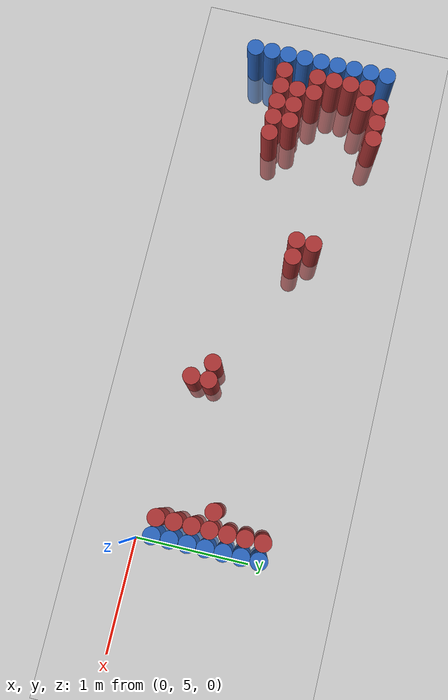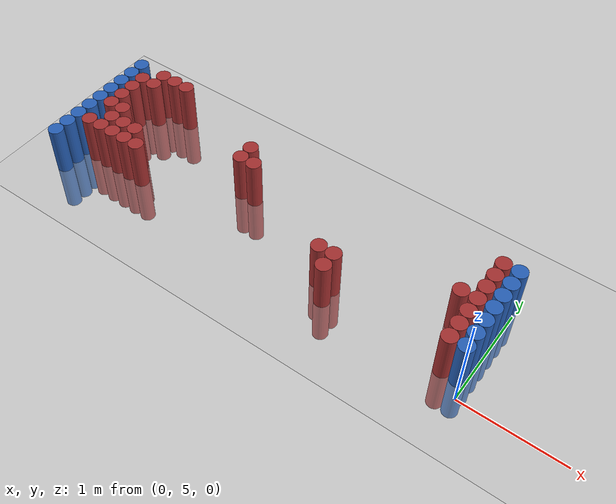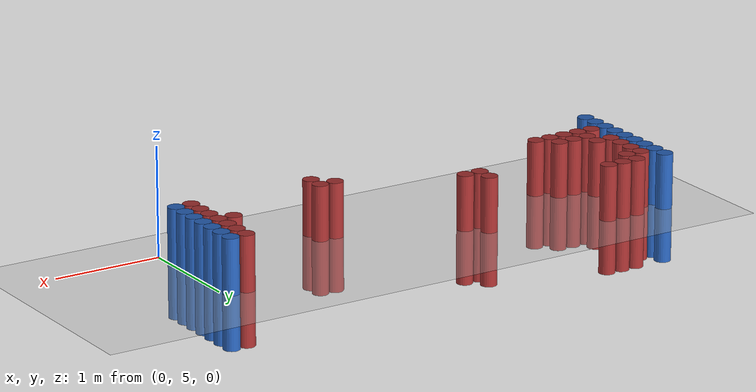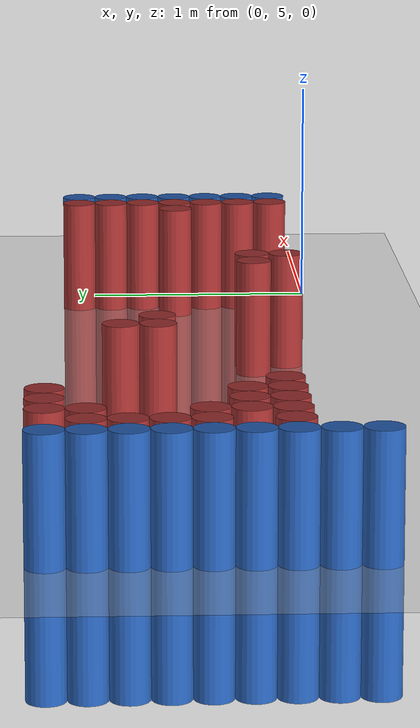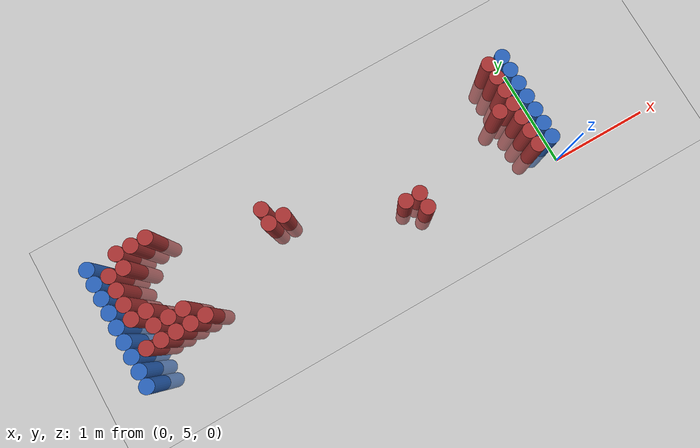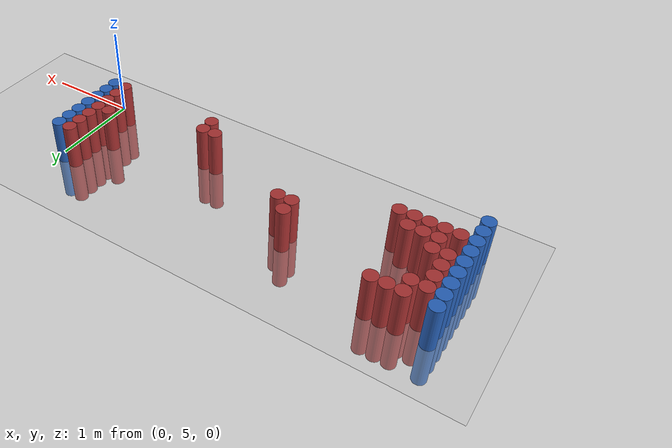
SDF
<sdf version="1.6">
 <world name="default">
  <model name="ground_plane">
   <static>1</static>
   <link name="link">
    <collision name="collision">
     <geometry><plane><normal>0 0 1</normal><size>100 100</size></plane></geometry>
     <surface><friction><ode><mu>100</mu><mu2>50</mu2></ode></friction></surface>
    </collision>
    <visual name="visual">
     <cast_shadows>0</cast_shadows>
     <geometry><plane><normal>0 0 1</normal><size>100 100</size></plane></geometry>
     <material>
      <script><uri>file://media/materials/scripts/gazebo.material</uri><name>Gazebo/Grey</name></script>
     </material>
    </visual>
   </link>
  </model>
  <model name="unit_cylinder_95">
   <static>1</static>
   <pose>-4.425000 5.025000 0.000000 0.000000 0.000000 0.000000</pose>
   <link name="link">
    <inertial>
     <mass>1</mass>
     <inertia><ixx>0.145833</ixx><ixy>0</ixy><ixz>0</ixz><iyy>0.145833</iyy><iyz>0</iyz><izz>0.125</izz></inertia>
    </inertial>
    <collision name="collision">
     <geometry><cylinder><radius>0.075000</radius><length>1</length></cylinder></geometry>
    </collision>
    <visual name="visual">
     <geometry><cylinder><radius>0.075000</radius><length>1</length></cylinder></geometry>
     <material>
      <ambient>0.152000 0.379000 0.720000 1</ambient>
      <diffuse>0.152000 0.379000 0.720000 1</diffuse>
     </material>
     <material>
      <script><name>Gazebo/Grey</name><uri>file://media/materials/scripts/gazebo.material</uri></script>
     </material>
    </visual>
   </link>
  </model>
  <model name="unit_cylinder_96">
   <static>1</static>
   <pose>-4.425000 5.175000 0.000000 0.000000 0.000000 0.000000</pose>
   <link name="link">
    <inertial>
     <mass>1</mass>
     <inertia><ixx>0.145833</ixx><ixy>0</ixy><ixz>0</ixz><iyy>0.145833</iyy><iyz>0</iyz><izz>0.125</izz></inertia>
    </inertial>
    <collision name="collision">
     <geometry><cylinder><radius>0.075000</radius><length>1</length></cylinder></geometry>
    </collision>
    <visual name="visual">
     <geometry><cylinder><radius>0.075000</radius><length>1</length></cylinder></geometry>
     <material>
      <ambient>0.152000 0.379000 0.720000 1</ambient>
      <diffuse>0.152000 0.379000 0.720000 1</diffuse>
     </material>
     <material>
      <script><name>Gazebo/Grey</name><uri>file://media/materials/scripts/gazebo.material</uri></script>
     </material>
    </visual>
   </link>
  </model>
  <model name="unit_cylinder_97">
   <static>1</static>
   <pose>-4.425000 5.325000 0.000000 0.000000 0.000000 0.000000</pose>
   <link name="link">
    <inertial>
     <mass>1</mass>
     <inertia><ixx>0.145833</ixx><ixy>0</ixy><ixz>0</ixz><iyy>0.145833</iyy><iyz>0</iyz><izz>0.125</izz></inertia>
    </inertial>
    <collision name="collision">
     <geometry><cylinder><radius>0.075000</radius><length>1</length></cylinder></geometry>
    </collision>
    <visual name="visual">
     <geometry><cylinder><radius>0.075000</radius><length>1</length></cylinder></geometry>
     <material>
      <ambient>0.152000 0.379000 0.720000 1</ambient>
      <diffuse>0.152000 0.379000 0.720000 1</diffuse>
     </material>
     <material>
      <script><name>Gazebo/Grey</name><uri>file://media/materials/scripts/gazebo.material</uri></script>
     </material>
    </visual>
   </link>
  </model>
  <model name="unit_cylinder_98">
   <static>1</static>
   <pose>-4.425000 5.475000 0.000000 0.000000 0.000000 0.000000</pose>
   <link name="link">
    <inertial>
     <mass>1</mass>
     <inertia><ixx>0.145833</ixx><ixy>0</ixy><ixz>0</ixz><iyy>0.145833</iyy><iyz>0</iyz><izz>0.125</izz></inertia>
    </inertial>
    <collision name="collision">
     <geometry><cylinder><radius>0.075000</radius><length>1</length></cylinder></geometry>
    </collision>
    <visual name="visual">
     <geometry><cylinder><radius>0.075000</radius><length>1</length></cylinder></geometry>
     <material>
      <ambient>0.152000 0.379000 0.720000 1</ambient>
      <diffuse>0.152000 0.379000 0.720000 1</diffuse>
     </material>
     <material>
      <script><name>Gazebo/Grey</name><uri>file://media/materials/scripts/gazebo.material</uri></script>
     </material>
    </visual>
   </link>
  </model>
  <model name="unit_cylinder_99">
   <static>1</static>
   <pose>-4.425000 5.625000 0.000000 0.000000 0.000000 0.000000</pose>
   <link name="link">
    <inertial>
     <mass>1</mass>
     <inertia><ixx>0.145833</ixx><ixy>0</ixy><ixz>0</ixz><iyy>0.145833</iyy><iyz>0</iyz><izz>0.125</izz></inertia>
    </inertial>
    <collision name="collision">
     <geometry><cylinder><radius>0.075000</radius><length>1</length></cylinder></geometry>
    </collision>
    <visual name="visual">
     <geometry><cylinder><radius>0.075000</radius><length>1</length></cylinder></geometry>
     <material>
      <ambient>0.152000 0.379000 0.720000 1</ambient>
      <diffuse>0.152000 0.379000 0.720000 1</diffuse>
     </material>
     <material>
      <script><name>Gazebo/Grey</name><uri>file://media/materials/scripts/gazebo.material</uri></script>
     </material>
    </visual>
   </link>
  </model>
  <model name="unit_cylinder_100">
   <static>1</static>
   <pose>-4.425000 5.775000 0.000000 0.000000 0.000000 0.000000</pose>
   <link name="link">
    <inertial>
     <mass>1</mass>
     <inertia><ixx>0.145833</ixx><ixy>0</ixy><ixz>0</ixz><iyy>0.145833</iyy><iyz>0</iyz><izz>0.125</izz></inertia>
    </inertial>
    <collision name="collision">
     <geometry><cylinder><radius>0.075000</radius><length>1</length></cylinder></geometry>
    </collision>
    <visual name="visual">
     <geometry><cylinder><radius>0.075000</radius><length>1</length></cylinder></geometry>
     <material>
      <ambient>0.152000 0.379000 0.720000 1</ambient>
      <diffuse>0.152000 0.379000 0.720000 1</diffuse>
     </material>
     <material>
      <script><name>Gazebo/Grey</name><uri>file://media/materials/scripts/gazebo.material</uri></script>
     </material>
    </visual>
   </link>
  </model>
  <model name="unit_cylinder_101">
   <static>1</static>
   <pose>-4.425000 5.925000 0.000000 0.000000 0.000000 0.000000</pose>
   <link name="link">
    <inertial>
     <mass>1</mass>
     <inertia><ixx>0.145833</ixx><ixy>0</ixy><ixz>0</ixz><iyy>0.145833</iyy><iyz>0</iyz><izz>0.125</izz></inertia>
    </inertial>
    <collision name="collision">
     <geometry><cylinder><radius>0.075000</radius><length>1</length></cylinder></geometry>
    </collision>
    <visual name="visual">
     <geometry><cylinder><radius>0.075000</radius><length>1</length></cylinder></geometry>
     <material>
      <ambient>0.152000 0.379000 0.720000 1</ambient>
      <diffuse>0.152000 0.379000 0.720000 1</diffuse>
     </material>
     <material>
      <script><name>Gazebo/Grey</name><uri>file://media/materials/scripts/gazebo.material</uri></script>
     </material>
    </visual>
   </link>
  </model>
  <model name="unit_cylinder_102">
   <static>1</static>
   <pose>-4.425000 6.075000 0.000000 0.000000 0.000000 0.000000</pose>
   <link name="link">
    <inertial>
     <mass>1</mass>
     <inertia><ixx>0.145833</ixx><ixy>0</ixy><ixz>0</ixz><iyy>0.145833</iyy><iyz>0</iyz><izz>0.125</izz></inertia>
    </inertial>
    <collision name="collision">
     <geometry><cylinder><radius>0.075000</radius><length>1</length></cylinder></geometry>
    </collision>
    <visual name="visual">
     <geometry><cylinder><radius>0.075000</radius><length>1</length></cylinder></geometry>
     <material>
      <ambient>0.152000 0.379000 0.720000 1</ambient>
      <diffuse>0.152000 0.379000 0.720000 1</diffuse>
     </material>
     <material>
      <script><name>Gazebo/Grey</name><uri>file://media/materials/scripts/gazebo.material</uri></script>
     </material>
    </visual>
   </link>
  </model>
  <model name="unit_cylinder_103">
   <static>1</static>
   <pose>-4.425000 6.225000 0.000000 0.000000 0.000000 0.000000</pose>
   <link name="link">
    <inertial>
     <mass>1</mass>
     <inertia><ixx>0.145833</ixx><ixy>0</ixy><ixz>0</ixz><iyy>0.145833</iyy><iyz>0</iyz><izz>0.125</izz></inertia>
    </inertial>
    <collision name="collision">
     <geometry><cylinder><radius>0.075000</radius><length>1</length></cylinder></geometry>
    </collision>
    <visual name="visual">
     <geometry><cylinder><radius>0.075000</radius><length>1</length></cylinder></geometry>
     <material>
      <ambient>0.152000 0.379000 0.720000 1</ambient>
      <diffuse>0.152000 0.379000 0.720000 1</diffuse>
     </material>
     <material>
      <script><name>Gazebo/Grey</name><uri>file://media/materials/scripts/gazebo.material</uri></script>
     </material>
    </visual>
   </link>
  </model>
  <model name="unit_cylinder_126">
   <static>1</static>
   <pose>-4.275000 5.325000 0.000000 0.000000 0.000000 0.000000</pose>
   <link name="link">
    <inertial>
     <mass>1</mass>
     <inertia><ixx>0.145833</ixx><ixy>0</ixy><ixz>0</ixz><iyy>0.145833</iyy><iyz>0</iyz><izz>0.125</izz></inertia>
    </inertial>
    <collision name="collision">
     <geometry><cylinder><radius>0.075000</radius><length>1</length></cylinder></geometry>
    </collision>
    <visual name="visual">
     <geometry><cylinder><radius>0.075000</radius><length>1</length></cylinder></geometry>
     <material>
      <ambient>0.648000 0.192000 0.192000 1</ambient>
      <diffuse>0.648000 0.192000 0.192000 1</diffuse>
     </material>
     <material>
      <script><name>Gazebo/Grey</name><uri>file://media/materials/scripts/gazebo.material</uri></script>
     </material>
    </visual>
   </link>
  </model>
  <model name="unit_cylinder_127">
   <static>1</static>
   <pose>-4.275000 5.625000 0.000000 0.000000 0.000000 0.000000</pose>
   <link name="link">
    <inertial>
     <mass>1</mass>
     <inertia><ixx>0.145833</ixx><ixy>0</ixy><ixz>0</ixz><iyy>0.145833</iyy><iyz>0</iyz><izz>0.125</izz></inertia>
    </inertial>
    <collision name="collision">
     <geometry><cylinder><radius>0.075000</radius><length>1</length></cylinder></geometry>
    </collision>
    <visual name="visual">
     <geometry><cylinder><radius>0.075000</radius><length>1</length></cylinder></geometry>
     <material>
      <ambient>0.648000 0.192000 0.192000 1</ambient>
      <diffuse>0.648000 0.192000 0.192000 1</diffuse>
     </material>
     <material>
      <script><name>Gazebo/Grey</name><uri>file://media/materials/scripts/gazebo.material</uri></script>
     </material>
    </visual>
   </link>
  </model>
  <model name="unit_cylinder_128">
   <static>1</static>
   <pose>-4.275000 5.775000 0.000000 0.000000 0.000000 0.000000</pose>
   <link name="link">
    <inertial>
     <mass>1</mass>
     <inertia><ixx>0.145833</ixx><ixy>0</ixy><ixz>0</ixz><iyy>0.145833</iyy><iyz>0</iyz><izz>0.125</izz></inertia>
    </inertial>
    <collision name="collision">
     <geometry><cylinder><radius>0.075000</radius><length>1</length></cylinder></geometry>
    </collision>
    <visual name="visual">
     <geometry><cylinder><radius>0.075000</radius><length>1</length></cylinder></geometry>
     <material>
      <ambient>0.648000 0.192000 0.192000 1</ambient>
      <diffuse>0.648000 0.192000 0.192000 1</diffuse>
     </material>
     <material>
      <script><name>Gazebo/Grey</name><uri>file://media/materials/scripts/gazebo.material</uri></script>
     </material>
    </visual>
   </link>
  </model>
  <model name="unit_cylinder_129">
   <static>1</static>
   <pose>-4.275000 5.925000 0.000000 0.000000 0.000000 0.000000</pose>
   <link name="link">
    <inertial>
     <mass>1</mass>
     <inertia><ixx>0.145833</ixx><ixy>0</ixy><ixz>0</ixz><iyy>0.145833</iyy><iyz>0</iyz><izz>0.125</izz></inertia>
    </inertial>
    <collision name="collision">
     <geometry><cylinder><radius>0.075000</radius><length>1</length></cylinder></geometry>
    </collision>
    <visual name="visual">
     <geometry><cylinder><radius>0.075000</radius><length>1</length></cylinder></geometry>
     <material>
      <ambient>0.648000 0.192000 0.192000 1</ambient>
      <diffuse>0.648000 0.192000 0.192000 1</diffuse>
     </material>
     <material>
      <script><name>Gazebo/Grey</name><uri>file://media/materials/scripts/gazebo.material</uri></script>
     </material>
    </visual>
   </link>
  </model>
  <model name="unit_cylinder_130">
   <static>1</static>
   <pose>-4.275000 6.075000 0.000000 0.000000 0.000000 0.000000</pose>
   <link name="link">
    <inertial>
     <mass>1</mass>
     <inertia><ixx>0.145833</ixx><ixy>0</ixy><ixz>0</ixz><iyy>0.145833</iyy><iyz>0</iyz><izz>0.125</izz></inertia>
    </inertial>
    <collision name="collision">
     <geometry><cylinder><radius>0.075000</radius><length>1</length></cylinder></geometry>
    </collision>
    <visual name="visual">
     <geometry><cylinder><radius>0.075000</radius><length>1</length></cylinder></geometry>
     <material>
      <ambient>0.648000 0.192000 0.192000 1</ambient>
      <diffuse>0.648000 0.192000 0.192000 1</diffuse>
     </material>
     <material>
      <script><name>Gazebo/Grey</name><uri>file://media/materials/scripts/gazebo.material</uri></script>
     </material>
    </visual>
   </link>
  </model>
  <model name="unit_cylinder_143">
   <static>1</static>
   <pose>-4.125000 5.325000 0.000000 0.000000 0.000000 0.000000</pose>
   <link name="link">
    <inertial>
     <mass>1</mass>
     <inertia><ixx>0.145833</ixx><ixy>0</ixy><ixz>0</ixz><iyy>0.145833</iyy><iyz>0</iyz><izz>0.125</izz></inertia>
    </inertial>
    <collision name="collision">
     <geometry><cylinder><radius>0.075000</radius><length>1</length></cylinder></geometry>
    </collision>
    <visual name="visual">
     <geometry><cylinder><radius>0.075000</radius><length>1</length></cylinder></geometry>
     <material>
      <ambient>0.648000 0.192000 0.192000 1</ambient>
      <diffuse>0.648000 0.192000 0.192000 1</diffuse>
     </material>
     <material>
      <script><name>Gazebo/Grey</name><uri>file://media/materials/scripts/gazebo.material</uri></script>
     </material>
    </visual>
   </link>
  </model>
  <model name="unit_cylinder_144">
   <static>1</static>
   <pose>-4.125000 5.475000 0.000000 0.000000 0.000000 0.000000</pose>
   <link name="link">
    <inertial>
     <mass>1</mass>
     <inertia><ixx>0.145833</ixx><ixy>0</ixy><ixz>0</ixz><iyy>0.145833</iyy><iyz>0</iyz><izz>0.125</izz></inertia>
    </inertial>
    <collision name="collision">
     <geometry><cylinder><radius>0.075000</radius><length>1</length></cylinder></geometry>
    </collision>
    <visual name="visual">
     <geometry><cylinder><radius>0.075000</radius><length>1</length></cylinder></geometry>
     <material>
      <ambient>0.648000 0.192000 0.192000 1</ambient>
      <diffuse>0.648000 0.192000 0.192000 1</diffuse>
     </material>
     <material>
      <script><name>Gazebo/Grey</name><uri>file://media/materials/scripts/gazebo.material</uri></script>
     </material>
    </visual>
   </link>
  </model>
  <model name="unit_cylinder_145">
   <static>1</static>
   <pose>-4.125000 5.625000 0.000000 0.000000 0.000000 0.000000</pose>
   <link name="link">
    <inertial>
     <mass>1</mass>
     <inertia><ixx>0.145833</ixx><ixy>0</ixy><ixz>0</ixz><iyy>0.145833</iyy><iyz>0</iyz><izz>0.125</izz></inertia>
    </inertial>
    <collision name="collision">
     <geometry><cylinder><radius>0.075000</radius><length>1</length></cylinder></geometry>
    </collision>
    <visual name="visual">
     <geometry><cylinder><radius>0.075000</radius><length>1</length></cylinder></geometry>
     <material>
      <ambient>0.648000 0.192000 0.192000 1</ambient>
      <diffuse>0.648000 0.192000 0.192000 1</diffuse>
     </material>
     <material>
      <script><name>Gazebo/Grey</name><uri>file://media/materials/scripts/gazebo.material</uri></script>
     </material>
    </visual>
   </link>
  </model>
  <model name="unit_cylinder_146">
   <static>1</static>
   <pose>-4.125000 6.075000 0.000000 0.000000 0.000000 0.000000</pose>
   <link name="link">
    <inertial>
     <mass>1</mass>
     <inertia><ixx>0.145833</ixx><ixy>0</ixy><ixz>0</ixz><iyy>0.145833</iyy><iyz>0</iyz><izz>0.125</izz></inertia>
    </inertial>
    <collision name="collision">
     <geometry><cylinder><radius>0.075000</radius><length>1</length></cylinder></geometry>
    </collision>
    <visual name="visual">
     <geometry><cylinder><radius>0.075000</radius><length>1</length></cylinder></geometry>
     <material>
      <ambient>0.648000 0.192000 0.192000 1</ambient>
      <diffuse>0.648000 0.192000 0.192000 1</diffuse>
     </material>
     <material>
      <script><name>Gazebo/Grey</name><uri>file://media/materials/scripts/gazebo.material</uri></script>
     </material>
    </visual>
   </link>
  </model>
  <model name="unit_cylinder_147">
   <static>1</static>
   <pose>-4.125000 6.225000 0.000000 0.000000 0.000000 0.000000</pose>
   <link name="link">
    <inertial>
     <mass>1</mass>
     <inertia><ixx>0.145833</ixx><ixy>0</ixy><ixz>0</ixz><iyy>0.145833</iyy><iyz>0</iyz><izz>0.125</izz></inertia>
    </inertial>
    <collision name="collision">
     <geometry><cylinder><radius>0.075000</radius><length>1</length></cylinder></geometry>
    </collision>
    <visual name="visual">
     <geometry><cylinder><radius>0.075000</radius><length>1</length></cylinder></geometry>
     <material>
      <ambient>0.648000 0.192000 0.192000 1</ambient>
      <diffuse>0.648000 0.192000 0.192000 1</diffuse>
     </material>
     <material>
      <script><name>Gazebo/Grey</name><uri>file://media/materials/scripts/gazebo.material</uri></script>
     </material>
    </visual>
   </link>
  </model>
  <model name="unit_cylinder_154">
   <static>1</static>
   <pose>-3.975000 5.325000 0.000000 0.000000 0.000000 0.000000</pose>
   <link name="link">
    <inertial>
     <mass>1</mass>
     <inertia><ixx>0.145833</ixx><ixy>0</ixy><ixz>0</ixz><iyy>0.145833</iyy><iyz>0</iyz><izz>0.125</izz></inertia>
    </inertial>
    <collision name="collision">
     <geometry><cylinder><radius>0.075000</radius><length>1</length></cylinder></geometry>
    </collision>
    <visual name="visual">
     <geometry><cylinder><radius>0.075000</radius><length>1</length></cylinder></geometry>
     <material>
      <ambient>0.648000 0.192000 0.192000 1</ambient>
      <diffuse>0.648000 0.192000 0.192000 1</diffuse>
     </material>
     <material>
      <script><name>Gazebo/Grey</name><uri>file://media/materials/scripts/gazebo.material</uri></script>
     </material>
    </visual>
   </link>
  </model>
  <model name="unit_cylinder_155">
   <static>1</static>
   <pose>-3.975000 5.475000 0.000000 0.000000 0.000000 0.000000</pose>
   <link name="link">
    <inertial>
     <mass>1</mass>
     <inertia><ixx>0.145833</ixx><ixy>0</ixy><ixz>0</ixz><iyy>0.145833</iyy><iyz>0</iyz><izz>0.125</izz></inertia>
    </inertial>
    <collision name="collision">
     <geometry><cylinder><radius>0.075000</radius><length>1</length></cylinder></geometry>
    </collision>
    <visual name="visual">
     <geometry><cylinder><radius>0.075000</radius><length>1</length></cylinder></geometry>
     <material>
      <ambient>0.648000 0.192000 0.192000 1</ambient>
      <diffuse>0.648000 0.192000 0.192000 1</diffuse>
     </material>
     <material>
      <script><name>Gazebo/Grey</name><uri>file://media/materials/scripts/gazebo.material</uri></script>
     </material>
    </visual>
   </link>
  </model>
  <model name="unit_cylinder_156">
   <static>1</static>
   <pose>-3.975000 6.225000 0.000000 0.000000 0.000000 0.000000</pose>
   <link name="link">
    <inertial>
     <mass>1</mass>
     <inertia><ixx>0.145833</ixx><ixy>0</ixy><ixz>0</ixz><iyy>0.145833</iyy><iyz>0</iyz><izz>0.125</izz></inertia>
    </inertial>
    <collision name="collision">
     <geometry><cylinder><radius>0.075000</radius><length>1</length></cylinder></geometry>
    </collision>
    <visual name="visual">
     <geometry><cylinder><radius>0.075000</radius><length>1</length></cylinder></geometry>
     <material>
      <ambient>0.648000 0.192000 0.192000 1</ambient>
      <diffuse>0.648000 0.192000 0.192000 1</diffuse>
     </material>
     <material>
      <script><name>Gazebo/Grey</name><uri>file://media/materials/scripts/gazebo.material</uri></script>
     </material>
    </visual>
   </link>
  </model>
  <model name="unit_cylinder_161">
   <static>1</static>
   <pose>-3.825000 5.325000 0.000000 0.000000 0.000000 0.000000</pose>
   <link name="link">
    <inertial>
     <mass>1</mass>
     <inertia><ixx>0.145833</ixx><ixy>0</ixy><ixz>0</ixz><iyy>0.145833</iyy><iyz>0</iyz><izz>0.125</izz></inertia>
    </inertial>
    <collision name="collision">
     <geometry><cylinder><radius>0.075000</radius><length>1</length></cylinder></geometry>
    </collision>
    <visual name="visual">
     <geometry><cylinder><radius>0.075000</radius><length>1</length></cylinder></geometry>
     <material>
      <ambient>0.648000 0.192000 0.192000 1</ambient>
      <diffuse>0.648000 0.192000 0.192000 1</diffuse>
     </material>
     <material>
      <script><name>Gazebo/Grey</name><uri>file://media/materials/scripts/gazebo.material</uri></script>
     </material>
    </visual>
   </link>
  </model>
  <model name="unit_cylinder_162">
   <static>1</static>
   <pose>-3.825000 5.475000 0.000000 0.000000 0.000000 0.000000</pose>
   <link name="link">
    <inertial>
     <mass>1</mass>
     <inertia><ixx>0.145833</ixx><ixy>0</ixy><ixz>0</ixz><iyy>0.145833</iyy><iyz>0</iyz><izz>0.125</izz></inertia>
    </inertial>
    <collision name="collision">
     <geometry><cylinder><radius>0.075000</radius><length>1</length></cylinder></geometry>
    </collision>
    <visual name="visual">
     <geometry><cylinder><radius>0.075000</radius><length>1</length></cylinder></geometry>
     <material>
      <ambient>0.648000 0.192000 0.192000 1</ambient>
      <diffuse>0.648000 0.192000 0.192000 1</diffuse>
     </material>
     <material>
      <script><name>Gazebo/Grey</name><uri>file://media/materials/scripts/gazebo.material</uri></script>
     </material>
    </visual>
   </link>
  </model>
  <model name="unit_cylinder_163">
   <static>1</static>
   <pose>-3.825000 6.225000 0.000000 0.000000 0.000000 0.000000</pose>
   <link name="link">
    <inertial>
     <mass>1</mass>
     <inertia><ixx>0.145833</ixx><ixy>0</ixy><ixz>0</ixz><iyy>0.145833</iyy><iyz>0</iyz><izz>0.125</izz></inertia>
    </inertial>
    <collision name="collision">
     <geometry><cylinder><radius>0.075000</radius><length>1</length></cylinder></geometry>
    </collision>
    <visual name="visual">
     <geometry><cylinder><radius>0.075000</radius><length>1</length></cylinder></geometry>
     <material>
      <ambient>0.648000 0.192000 0.192000 1</ambient>
      <diffuse>0.648000 0.192000 0.192000 1</diffuse>
     </material>
     <material>
      <script><name>Gazebo/Grey</name><uri>file://media/materials/scripts/gazebo.material</uri></script>
     </material>
    </visual>
   </link>
  </model>
  <model name="unit_cylinder_167">
   <static>1</static>
   <pose>-3.675000 5.325000 0.000000 0.000000 0.000000 0.000000</pose>
   <link name="link">
    <inertial>
     <mass>1</mass>
     <inertia><ixx>0.145833</ixx><ixy>0</ixy><ixz>0</ixz><iyy>0.145833</iyy><iyz>0</iyz><izz>0.125</izz></inertia>
    </inertial>
    <collision name="collision">
     <geometry><cylinder><radius>0.075000</radius><length>1</length></cylinder></geometry>
    </collision>
    <visual name="visual">
     <geometry><cylinder><radius>0.075000</radius><length>1</length></cylinder></geometry>
     <material>
      <ambient>0.648000 0.192000 0.192000 1</ambient>
      <diffuse>0.648000 0.192000 0.192000 1</diffuse>
     </material>
     <material>
      <script><name>Gazebo/Grey</name><uri>file://media/materials/scripts/gazebo.material</uri></script>
     </material>
    </visual>
   </link>
  </model>
  <model name="unit_cylinder_184">
   <static>1</static>
   <pose>-2.775000 5.775000 0.000000 0.000000 0.000000 0.000000</pose>
   <link name="link">
    <inertial>
     <mass>1</mass>
     <inertia><ixx>0.145833</ixx><ixy>0</ixy><ixz>0</ixz><iyy>0.145833</iyy><iyz>0</iyz><izz>0.125</izz></inertia>
    </inertial>
    <collision name="collision">
     <geometry><cylinder><radius>0.075000</radius><length>1</length></cylinder></geometry>
    </collision>
    <visual name="visual">
     <geometry><cylinder><radius>0.075000</radius><length>1</length></cylinder></geometry>
     <material>
      <ambient>0.648000 0.192000 0.192000 1</ambient>
      <diffuse>0.648000 0.192000 0.192000 1</diffuse>
     </material>
     <material>
      <script><name>Gazebo/Grey</name><uri>file://media/materials/scripts/gazebo.material</uri></script>
     </material>
    </visual>
   </link>
  </model>
  <model name="unit_cylinder_185">
   <static>1</static>
   <pose>-2.775000 5.925000 0.000000 0.000000 0.000000 0.000000</pose>
   <link name="link">
    <inertial>
     <mass>1</mass>
     <inertia><ixx>0.145833</ixx><ixy>0</ixy><ixz>0</ixz><iyy>0.145833</iyy><iyz>0</iyz><izz>0.125</izz></inertia>
    </inertial>
    <collision name="collision">
     <geometry><cylinder><radius>0.075000</radius><length>1</length></cylinder></geometry>
    </collision>
    <visual name="visual">
     <geometry><cylinder><radius>0.075000</radius><length>1</length></cylinder></geometry>
     <material>
      <ambient>0.648000 0.192000 0.192000 1</ambient>
      <diffuse>0.648000 0.192000 0.192000 1</diffuse>
     </material>
     <material>
      <script><name>Gazebo/Grey</name><uri>file://media/materials/scripts/gazebo.material</uri></script>
     </material>
    </visual>
   </link>
  </model>
  <model name="unit_cylinder_187">
   <static>1</static>
   <pose>-2.625000 5.775000 0.000000 0.000000 0.000000 0.000000</pose>
   <link name="link">
    <inertial>
     <mass>1</mass>
     <inertia><ixx>0.145833</ixx><ixy>0</ixy><ixz>0</ixz><iyy>0.145833</iyy><iyz>0</iyz><izz>0.125</izz></inertia>
    </inertial>
    <collision name="collision">
     <geometry><cylinder><radius>0.075000</radius><length>1</length></cylinder></geometry>
    </collision>
    <visual name="visual">
     <geometry><cylinder><radius>0.075000</radius><length>1</length></cylinder></geometry>
     <material>
      <ambient>0.648000 0.192000 0.192000 1</ambient>
      <diffuse>0.648000 0.192000 0.192000 1</diffuse>
     </material>
     <material>
      <script><name>Gazebo/Grey</name><uri>file://media/materials/scripts/gazebo.material</uri></script>
     </material>
    </visual>
   </link>
  </model>
  <model name="unit_cylinder_227">
   <static>1</static>
   <pose>-1.575000 5.325000 0.000000 0.000000 0.000000 0.000000</pose>
   <link name="link">
    <inertial>
     <mass>1</mass>
     <inertia><ixx>0.145833</ixx><ixy>0</ixy><ixz>0</ixz><iyy>0.145833</iyy><iyz>0</iyz><izz>0.125</izz></inertia>
    </inertial>
    <collision name="collision">
     <geometry><cylinder><radius>0.075000</radius><length>1</length></cylinder></geometry>
    </collision>
    <visual name="visual">
     <geometry><cylinder><radius>0.075000</radius><length>1</length></cylinder></geometry>
     <material>
      <ambient>0.648000 0.192000 0.192000 1</ambient>
      <diffuse>0.648000 0.192000 0.192000 1</diffuse>
     </material>
     <material>
      <script><name>Gazebo/Grey</name><uri>file://media/materials/scripts/gazebo.material</uri></script>
     </material>
    </visual>
   </link>
  </model>
  <model name="unit_cylinder_228">
   <static>1</static>
   <pose>-1.425000 5.175000 0.000000 0.000000 0.000000 0.000000</pose>
   <link name="link">
    <inertial>
     <mass>1</mass>
     <inertia><ixx>0.145833</ixx><ixy>0</ixy><ixz>0</ixz><iyy>0.145833</iyy><iyz>0</iyz><izz>0.125</izz></inertia>
    </inertial>
    <collision name="collision">
     <geometry><cylinder><radius>0.075000</radius><length>1</length></cylinder></geometry>
    </collision>
    <visual name="visual">
     <geometry><cylinder><radius>0.075000</radius><length>1</length></cylinder></geometry>
     <material>
      <ambient>0.648000 0.192000 0.192000 1</ambient>
      <diffuse>0.648000 0.192000 0.192000 1</diffuse>
     </material>
     <material>
      <script><name>Gazebo/Grey</name><uri>file://media/materials/scripts/gazebo.material</uri></script>
     </material>
    </visual>
   </link>
  </model>
  <model name="unit_cylinder_229">
   <static>1</static>
   <pose>-1.425000 5.325000 0.000000 0.000000 0.000000 0.000000</pose>
   <link name="link">
    <inertial>
     <mass>1</mass>
     <inertia><ixx>0.145833</ixx><ixy>0</ixy><ixz>0</ixz><iyy>0.145833</iyy><iyz>0</iyz><izz>0.125</izz></inertia>
    </inertial>
    <collision name="collision">
     <geometry><cylinder><radius>0.075000</radius><length>1</length></cylinder></geometry>
    </collision>
    <visual name="visual">
     <geometry><cylinder><radius>0.075000</radius><length>1</length></cylinder></geometry>
     <material>
      <ambient>0.648000 0.192000 0.192000 1</ambient>
      <diffuse>0.648000 0.192000 0.192000 1</diffuse>
     </material>
     <material>
      <script><name>Gazebo/Grey</name><uri>file://media/materials/scripts/gazebo.material</uri></script>
     </material>
    </visual>
   </link>
  </model>
  <model name="unit_cylinder_236">
   <static>1</static>
   <pose>-0.375000 5.625000 0.000000 0.000000 0.000000 0.000000</pose>
   <link name="link">
    <inertial>
     <mass>1</mass>
     <inertia><ixx>0.145833</ixx><ixy>0</ixy><ixz>0</ixz><iyy>0.145833</iyy><iyz>0</iyz><izz>0.125</izz></inertia>
    </inertial>
    <collision name="collision">
     <geometry><cylinder><radius>0.075000</radius><length>1</length></cylinder></geometry>
    </collision>
    <visual name="visual">
     <geometry><cylinder><radius>0.075000</radius><length>1</length></cylinder></geometry>
     <material>
      <ambient>0.648000 0.192000 0.192000 1</ambient>
      <diffuse>0.648000 0.192000 0.192000 1</diffuse>
     </material>
     <material>
      <script><name>Gazebo/Grey</name><uri>file://media/materials/scripts/gazebo.material</uri></script>
     </material>
    </visual>
   </link>
  </model>
  <model name="unit_cylinder_240">
   <static>1</static>
   <pose>-0.225000 5.175000 0.000000 0.000000 0.000000 0.000000</pose>
   <link name="link">
    <inertial>
     <mass>1</mass>
     <inertia><ixx>0.145833</ixx><ixy>0</ixy><ixz>0</ixz><iyy>0.145833</iyy><iyz>0</iyz><izz>0.125</izz></inertia>
    </inertial>
    <collision name="collision">
     <geometry><cylinder><radius>0.075000</radius><length>1</length></cylinder></geometry>
    </collision>
    <visual name="visual">
     <geometry><cylinder><radius>0.075000</radius><length>1</length></cylinder></geometry>
     <material>
      <ambient>0.648000 0.192000 0.192000 1</ambient>
      <diffuse>0.648000 0.192000 0.192000 1</diffuse>
     </material>
     <material>
      <script><name>Gazebo/Grey</name><uri>file://media/materials/scripts/gazebo.material</uri></script>
     </material>
    </visual>
   </link>
  </model>
  <model name="unit_cylinder_241">
   <static>1</static>
   <pose>-0.225000 5.325000 0.000000 0.000000 0.000000 0.000000</pose>
   <link name="link">
    <inertial>
     <mass>1</mass>
     <inertia><ixx>0.145833</ixx><ixy>0</ixy><ixz>0</ixz><iyy>0.145833</iyy><iyz>0</iyz><izz>0.125</izz></inertia>
    </inertial>
    <collision name="collision">
     <geometry><cylinder><radius>0.075000</radius><length>1</length></cylinder></geometry>
    </collision>
    <visual name="visual">
     <geometry><cylinder><radius>0.075000</radius><length>1</length></cylinder></geometry>
     <material>
      <ambient>0.648000 0.192000 0.192000 1</ambient>
      <diffuse>0.648000 0.192000 0.192000 1</diffuse>
     </material>
     <material>
      <script><name>Gazebo/Grey</name><uri>file://media/materials/scripts/gazebo.material</uri></script>
     </material>
    </visual>
   </link>
  </model>
  <model name="unit_cylinder_242">
   <static>1</static>
   <pose>-0.225000 5.475000 0.000000 0.000000 0.000000 0.000000</pose>
   <link name="link">
    <inertial>
     <mass>1</mass>
     <inertia><ixx>0.145833</ixx><ixy>0</ixy><ixz>0</ixz><iyy>0.145833</iyy><iyz>0</iyz><izz>0.125</izz></inertia>
    </inertial>
    <collision name="collision">
     <geometry><cylinder><radius>0.075000</radius><length>1</length></cylinder></geometry>
    </collision>
    <visual name="visual">
     <geometry><cylinder><radius>0.075000</radius><length>1</length></cylinder></geometry>
     <material>
      <ambient>0.648000 0.192000 0.192000 1</ambient>
      <diffuse>0.648000 0.192000 0.192000 1</diffuse>
     </material>
     <material>
      <script><name>Gazebo/Grey</name><uri>file://media/materials/scripts/gazebo.material</uri></script>
     </material>
    </visual>
   </link>
  </model>
  <model name="unit_cylinder_243">
   <static>1</static>
   <pose>-0.225000 5.625000 0.000000 0.000000 0.000000 0.000000</pose>
   <link name="link">
    <inertial>
     <mass>1</mass>
     <inertia><ixx>0.145833</ixx><ixy>0</ixy><ixz>0</ixz><iyy>0.145833</iyy><iyz>0</iyz><izz>0.125</izz></inertia>
    </inertial>
    <collision name="collision">
     <geometry><cylinder><radius>0.075000</radius><length>1</length></cylinder></geometry>
    </collision>
    <visual name="visual">
     <geometry><cylinder><radius>0.075000</radius><length>1</length></cylinder></geometry>
     <material>
      <ambient>0.648000 0.192000 0.192000 1</ambient>
      <diffuse>0.648000 0.192000 0.192000 1</diffuse>
     </material>
     <material>
      <script><name>Gazebo/Grey</name><uri>file://media/materials/scripts/gazebo.material</uri></script>
     </material>
    </visual>
   </link>
  </model>
  <model name="unit_cylinder_244">
   <static>1</static>
   <pose>-0.225000 5.775000 0.000000 0.000000 0.000000 0.000000</pose>
   <link name="link">
    <inertial>
     <mass>1</mass>
     <inertia><ixx>0.145833</ixx><ixy>0</ixy><ixz>0</ixz><iyy>0.145833</iyy><iyz>0</iyz><izz>0.125</izz></inertia>
    </inertial>
    <collision name="collision">
     <geometry><cylinder><radius>0.075000</radius><length>1</length></cylinder></geometry>
    </collision>
    <visual name="visual">
     <geometry><cylinder><radius>0.075000</radius><length>1</length></cylinder></geometry>
     <material>
      <ambient>0.648000 0.192000 0.192000 1</ambient>
      <diffuse>0.648000 0.192000 0.192000 1</diffuse>
     </material>
     <material>
      <script><name>Gazebo/Grey</name><uri>file://media/materials/scripts/gazebo.material</uri></script>
     </material>
    </visual>
   </link>
  </model>
  <model name="unit_cylinder_245">
   <static>1</static>
   <pose>-0.225000 5.925000 0.000000 0.000000 0.000000 0.000000</pose>
   <link name="link">
    <inertial>
     <mass>1</mass>
     <inertia><ixx>0.145833</ixx><ixy>0</ixy><ixz>0</ixz><iyy>0.145833</iyy><iyz>0</iyz><izz>0.125</izz></inertia>
    </inertial>
    <collision name="collision">
     <geometry><cylinder><radius>0.075000</radius><length>1</length></cylinder></geometry>
    </collision>
    <visual name="visual">
     <geometry><cylinder><radius>0.075000</radius><length>1</length></cylinder></geometry>
     <material>
      <ambient>0.648000 0.192000 0.192000 1</ambient>
      <diffuse>0.648000 0.192000 0.192000 1</diffuse>
     </material>
     <material>
      <script><name>Gazebo/Grey</name><uri>file://media/materials/scripts/gazebo.material</uri></script>
     </material>
    </visual>
   </link>
  </model>
  <model name="unit_cylinder_246">
   <static>1</static>
   <pose>-0.225000 6.075000 0.000000 0.000000 0.000000 0.000000</pose>
   <link name="link">
    <inertial>
     <mass>1</mass>
     <inertia><ixx>0.145833</ixx><ixy>0</ixy><ixz>0</ixz><iyy>0.145833</iyy><iyz>0</iyz><izz>0.125</izz></inertia>
    </inertial>
    <collision name="collision">
     <geometry><cylinder><radius>0.075000</radius><length>1</length></cylinder></geometry>
    </collision>
    <visual name="visual">
     <geometry><cylinder><radius>0.075000</radius><length>1</length></cylinder></geometry>
     <material>
      <ambient>0.648000 0.192000 0.192000 1</ambient>
      <diffuse>0.648000 0.192000 0.192000 1</diffuse>
     </material>
     <material>
      <script><name>Gazebo/Grey</name><uri>file://media/materials/scripts/gazebo.material</uri></script>
     </material>
    </visual>
   </link>
  </model>
  <model name="unit_cylinder_254">
   <static>1</static>
   <pose>-0.075000 5.175000 0.000000 0.000000 0.000000 0.000000</pose>
   <link name="link">
    <inertial>
     <mass>1</mass>
     <inertia><ixx>0.145833</ixx><ixy>0</ixy><ixz>0</ixz><iyy>0.145833</iyy><iyz>0</iyz><izz>0.125</izz></inertia>
    </inertial>
    <collision name="collision">
     <geometry><cylinder><radius>0.075000</radius><length>1</length></cylinder></geometry>
    </collision>
    <visual name="visual">
     <geometry><cylinder><radius>0.075000</radius><length>1</length></cylinder></geometry>
     <material>
      <ambient>0.152000 0.379000 0.720000 1</ambient>
      <diffuse>0.152000 0.379000 0.720000 1</diffuse>
     </material>
     <material>
      <script><name>Gazebo/Grey</name><uri>file://media/materials/scripts/gazebo.material</uri></script>
     </material>
    </visual>
   </link>
  </model>
  <model name="unit_cylinder_255">
   <static>1</static>
   <pose>-0.075000 5.325000 0.000000 0.000000 0.000000 0.000000</pose>
   <link name="link">
    <inertial>
     <mass>1</mass>
     <inertia><ixx>0.145833</ixx><ixy>0</ixy><ixz>0</ixz><iyy>0.145833</iyy><iyz>0</iyz><izz>0.125</izz></inertia>
    </inertial>
    <collision name="collision">
     <geometry><cylinder><radius>0.075000</radius><length>1</length></cylinder></geometry>
    </collision>
    <visual name="visual">
     <geometry><cylinder><radius>0.075000</radius><length>1</length></cylinder></geometry>
     <material>
      <ambient>0.152000 0.379000 0.720000 1</ambient>
      <diffuse>0.152000 0.379000 0.720000 1</diffuse>
     </material>
     <material>
      <script><name>Gazebo/Grey</name><uri>file://media/materials/scripts/gazebo.material</uri></script>
     </material>
    </visual>
   </link>
  </model>
  <model name="unit_cylinder_256">
   <static>1</static>
   <pose>-0.075000 5.475000 0.000000 0.000000 0.000000 0.000000</pose>
   <link name="link">
    <inertial>
     <mass>1</mass>
     <inertia><ixx>0.145833</ixx><ixy>0</ixy><ixz>0</ixz><iyy>0.145833</iyy><iyz>0</iyz><izz>0.125</izz></inertia>
    </inertial>
    <collision name="collision">
     <geometry><cylinder><radius>0.075000</radius><length>1</length></cylinder></geometry>
    </collision>
    <visual name="visual">
     <geometry><cylinder><radius>0.075000</radius><length>1</length></cylinder></geometry>
     <material>
      <ambient>0.152000 0.379000 0.720000 1</ambient>
      <diffuse>0.152000 0.379000 0.720000 1</diffuse>
     </material>
     <material>
      <script><name>Gazebo/Grey</name><uri>file://media/materials/scripts/gazebo.material</uri></script>
     </material>
    </visual>
   </link>
  </model>
  <model name="unit_cylinder_257">
   <static>1</static>
   <pose>-0.075000 5.625000 0.000000 0.000000 0.000000 0.000000</pose>
   <link name="link">
    <inertial>
     <mass>1</mass>
     <inertia><ixx>0.145833</ixx><ixy>0</ixy><ixz>0</ixz><iyy>0.145833</iyy><iyz>0</iyz><izz>0.125</izz></inertia>
    </inertial>
    <collision name="collision">
     <geometry><cylinder><radius>0.075000</radius><length>1</length></cylinder></geometry>
    </collision>
    <visual name="visual">
     <geometry><cylinder><radius>0.075000</radius><length>1</length></cylinder></geometry>
     <material>
      <ambient>0.152000 0.379000 0.720000 1</ambient>
      <diffuse>0.152000 0.379000 0.720000 1</diffuse>
     </material>
     <material>
      <script><name>Gazebo/Grey</name><uri>file://media/materials/scripts/gazebo.material</uri></script>
     </material>
    </visual>
   </link>
  </model>
  <model name="unit_cylinder_258">
   <static>1</static>
   <pose>-0.075000 5.775000 0.000000 0.000000 0.000000 0.000000</pose>
   <link name="link">
    <inertial>
     <mass>1</mass>
     <inertia><ixx>0.145833</ixx><ixy>0</ixy><ixz>0</ixz><iyy>0.145833</iyy><iyz>0</iyz><izz>0.125</izz></inertia>
    </inertial>
    <collision name="collision">
     <geometry><cylinder><radius>0.075000</radius><length>1</length></cylinder></geometry>
    </collision>
    <visual name="visual">
     <geometry><cylinder><radius>0.075000</radius><length>1</length></cylinder></geometry>
     <material>
      <ambient>0.152000 0.379000 0.720000 1</ambient>
      <diffuse>0.152000 0.379000 0.720000 1</diffuse>
     </material>
     <material>
      <script><name>Gazebo/Grey</name><uri>file://media/materials/scripts/gazebo.material</uri></script>
     </material>
    </visual>
   </link>
  </model>
  <model name="unit_cylinder_259">
   <static>1</static>
   <pose>-0.075000 5.925000 0.000000 0.000000 0.000000 0.000000</pose>
   <link name="link">
    <inertial>
     <mass>1</mass>
     <inertia><ixx>0.145833</ixx><ixy>0</ixy><ixz>0</ixz><iyy>0.145833</iyy><iyz>0</iyz><izz>0.125</izz></inertia>
    </inertial>
    <collision name="collision">
     <geometry><cylinder><radius>0.075000</radius><length>1</length></cylinder></geometry>
    </collision>
    <visual name="visual">
     <geometry><cylinder><radius>0.075000</radius><length>1</length></cylinder></geometry>
     <material>
      <ambient>0.152000 0.379000 0.720000 1</ambient>
      <diffuse>0.152000 0.379000 0.720000 1</diffuse>
     </material>
     <material>
      <script><name>Gazebo/Grey</name><uri>file://media/materials/scripts/gazebo.material</uri></script>
     </material>
    </visual>
   </link>
  </model>
  <model name="unit_cylinder_260">
   <static>1</static>
   <pose>-0.075000 6.075000 0.000000 0.000000 0.000000 0.000000</pose>
   <link name="link">
    <inertial>
     <mass>1</mass>
     <inertia><ixx>0.145833</ixx><ixy>0</ixy><ixz>0</ixz><iyy>0.145833</iyy><iyz>0</iyz><izz>0.125</izz></inertia>
    </inertial>
    <collision name="collision">
     <geometry><cylinder><radius>0.075000</radius><length>1</length></cylinder></geometry>
    </collision>
    <visual name="visual">
     <geometry><cylinder><radius>0.075000</radius><length>1</length></cylinder></geometry>
     <material>
      <ambient>0.152000 0.379000 0.720000 1</ambient>
      <diffuse>0.152000 0.379000 0.720000 1</diffuse>
     </material>
     <material>
      <script><name>Gazebo/Grey</name><uri>file://media/materials/scripts/gazebo.material</uri></script>
     </material>
    </visual>
   </link>
  </model>
 </world>
</sdf>
